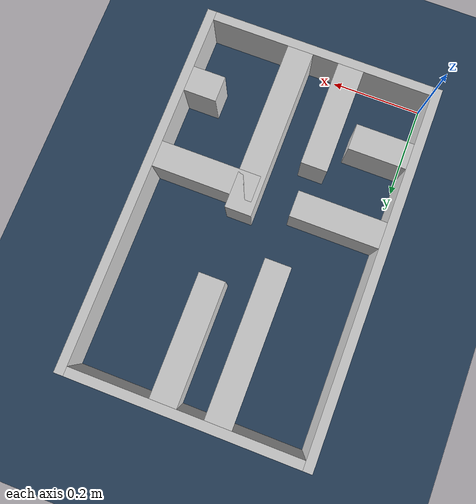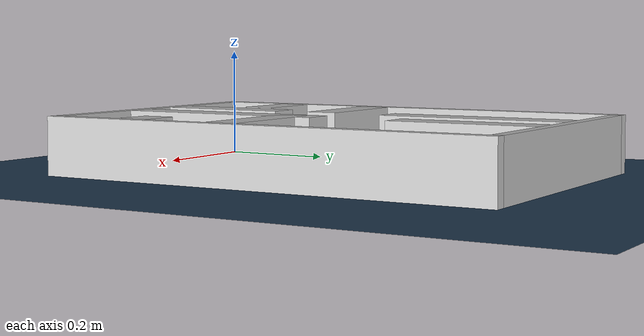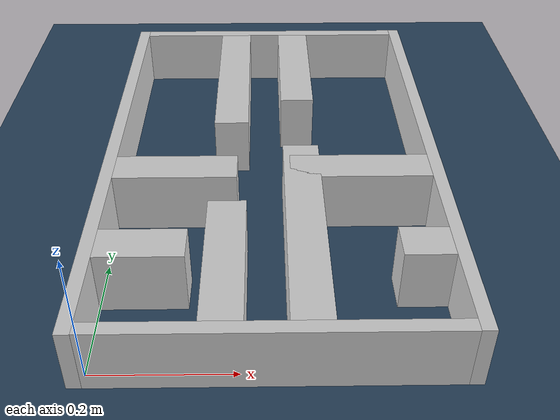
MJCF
<?xml version="1.0" ?>
<mujoco model="generated_real_template">
  <compiler angle="degree"/>
  <option timestep="0.002" integrator="implicitfast" iterations="100" cone="elliptic"/>
  <default>
    <geom density="1"/>
  </default>
  <asset>
    <texture builtin="gradient" height="3072" rgb1="0.3 0.5 0.7" rgb2="0 0 0" type="skybox" width="512"/>
    <texture builtin="checker" height="300" mark="edge" markrgb="0.8 0.8 0.8" name="groundplane" rgb1="0.2 0.3 0.4" rgb2="0.1 0.2 0.3" type="2d" width="300"/>
    <material name="groundplane" reflectance="0.2" texrepeat="5 5" texture="groundplane" texuniform="true"/>
  </asset>
  <worldbody>
    <light dir="0 0 -1" directional="true" pos="0 0 1.5"/>
    <geom name="floor" type="plane" condim="4" friction="0.5 0.005 0.001" material="groundplane" size="0 0 0.05"/>
    <body name="walls">
      <geom name="wall_boundary_left" type="box" condim="4" friction="1.0 0.005 0.0001" rgba="0.8 0.8 0.8 1" pos="-0.010000 0.387500 0.050000" euler="0 0 0.000000" size="0.010000 0.407500 0.050000"/>
      <geom name="wall_boundary_right" type="box" condim="4" friction="1.0 0.005 0.0001" rgba="0.8 0.8 0.8 1" pos="0.500000 0.387500 0.050000" euler="0 0 0.000000" size="0.010000 0.407500 0.050000"/>
      <geom name="wall_boundary_bottom" type="box" condim="4" friction="1.0 0.005 0.0001" rgba="0.8 0.8 0.8 1" pos="0.245000 -0.010000 0.050000" euler="0 0 0.000000" size="0.245000 0.010000 0.050000"/>
      <geom name="wall_boundary_top" type="box" condim="4" friction="1.0 0.005 0.0001" rgba="0.8 0.8 0.8 1" pos="0.245000 0.785000 0.050000" euler="0 0 0.000000" size="0.245000 0.010000 0.050000"/>
      <geom name="wall_inner_1_1" type="box" condim="4" friction="1.0 0.005 0.0001" rgba="0.8 0.8 0.8 1" pos="0.095151 0.318164 0.050000" euler="0 0 0.000000" size="0.095151 0.028500 0.050000"/>
      <geom name="wall_inner_1_2" type="box" condim="4" friction="1.0 0.005 0.0001" rgba="0.8 0.8 0.8 1" pos="0.381140 0.318164 0.050000" euler="0 0 0.000000" size="0.108860 0.028500 0.050000"/>
      <geom name="wall_inner_2_1" type="box" condim="4" friction="1.0 0.005 0.0001" rgba="0.8 0.8 0.8 1" pos="0.290713 0.187316 0.050000" euler="0 0 90.000000" size="0.187316 0.028500 0.050000"/>
      <geom name="wall_inner_2_2" type="box" condim="4" friction="1.0 0.005 0.0001" rgba="0.8 0.8 0.8 1" pos="0.290713 0.645293 0.050000" euler="0 0 90.000000" size="0.129707 0.028500 0.050000"/>
      <geom name="wall_inner_3_1" type="box" condim="4" friction="1.0 0.005 0.0001" rgba="0.8 0.8 0.8 1" pos="0.177613 0.116410 0.050000" euler="0 0 90.000000" size="0.116410 0.028500 0.050000"/>
      <geom name="wall_inner_3_2" type="box" condim="4" friction="1.0 0.005 0.0001" rgba="0.8 0.8 0.8 1" pos="0.177613 0.608921 0.050000" euler="0 0 90.000000" size="0.166079 0.028500 0.050000"/>
      <geom name="wall_inner_4_1" type="box" condim="4" friction="1.0 0.005 0.0001" rgba="0.8 0.8 0.8 1" pos="0.062573 0.142272 0.050000" euler="0 0 0.000000" size="0.062573 0.028500 0.050000"/>
      <geom name="wall_inner_4_2" type="box" condim="4" friction="1.0 0.005 0.0001" rgba="0.8 0.8 0.8 1" pos="0.454225 0.142272 0.050000" euler="0 0 0.000000" size="0.035775 0.028500 0.050000"/>
    </body>
  </worldbody>
</mujoco>
